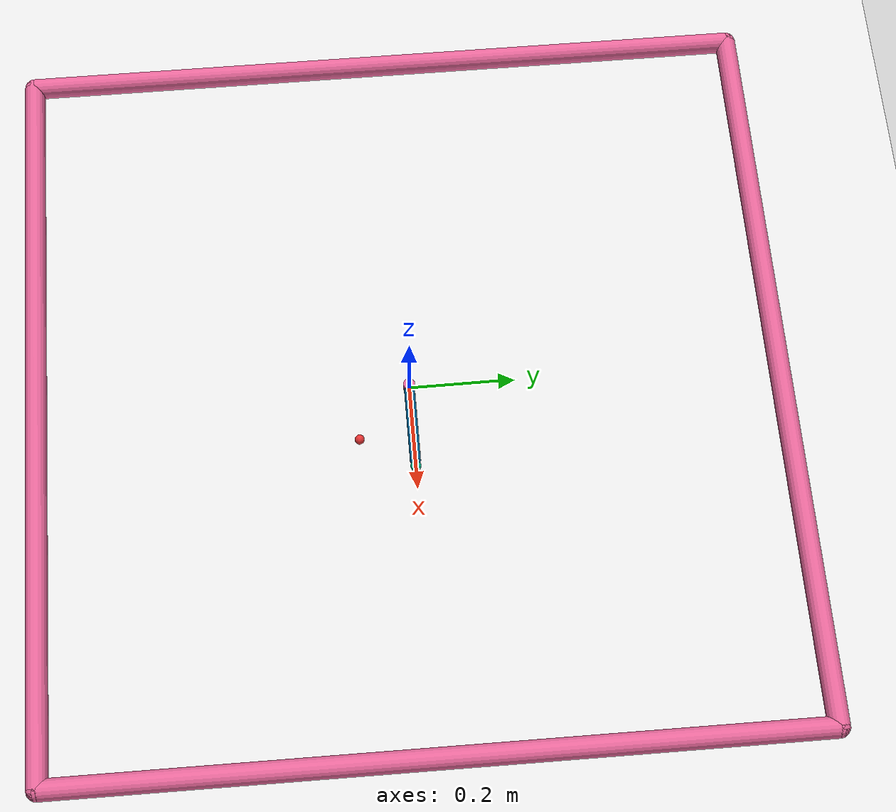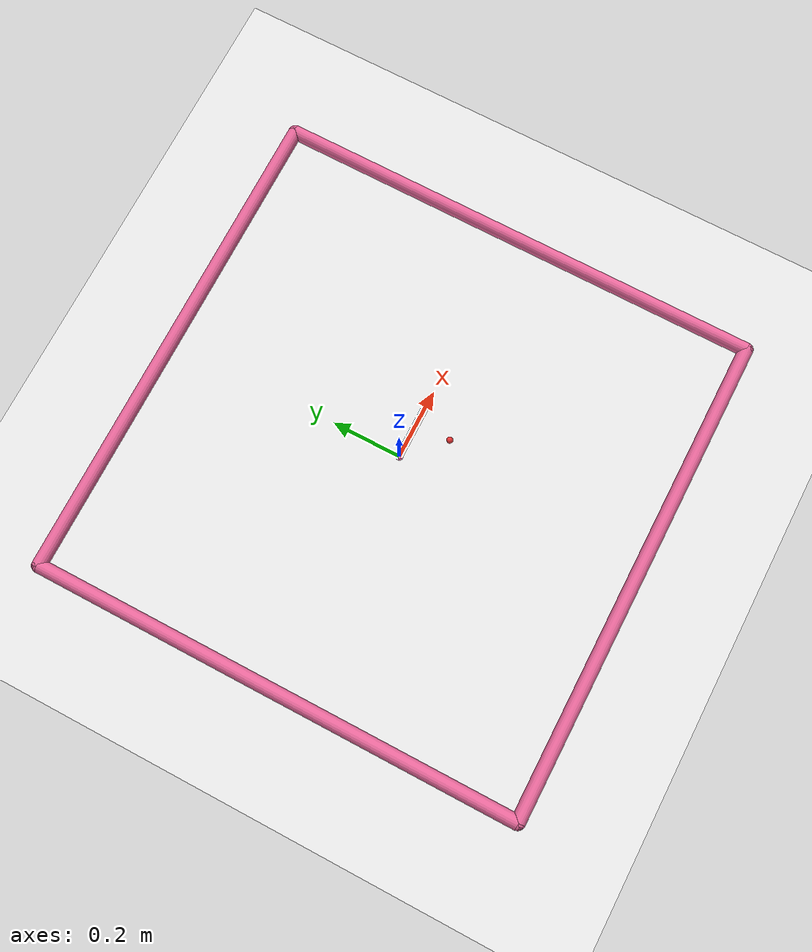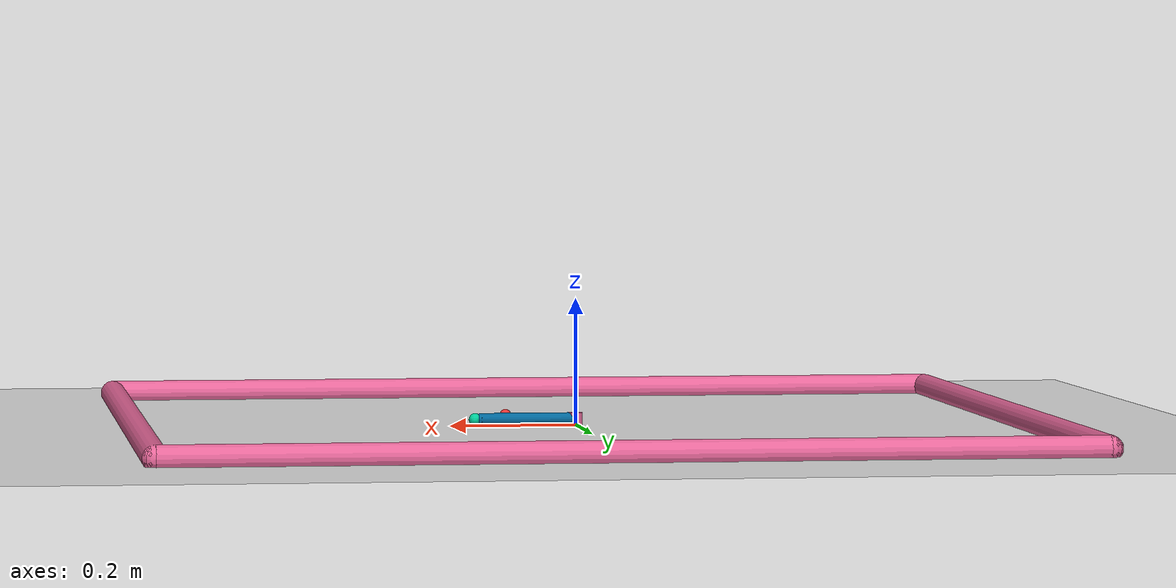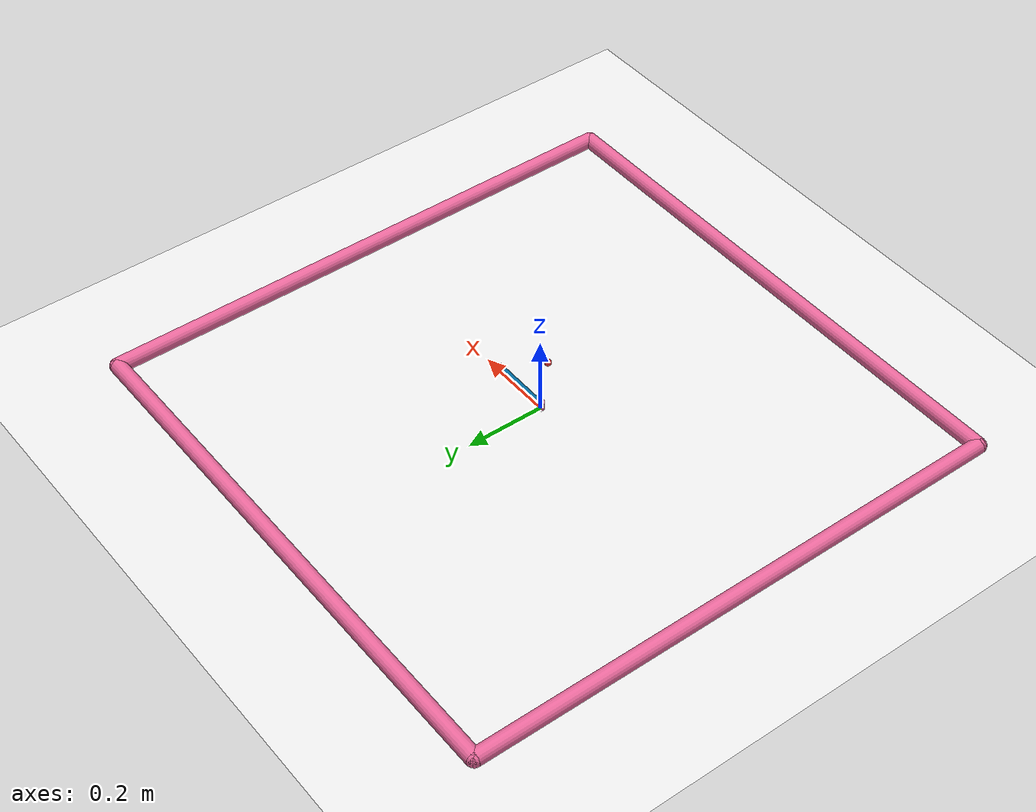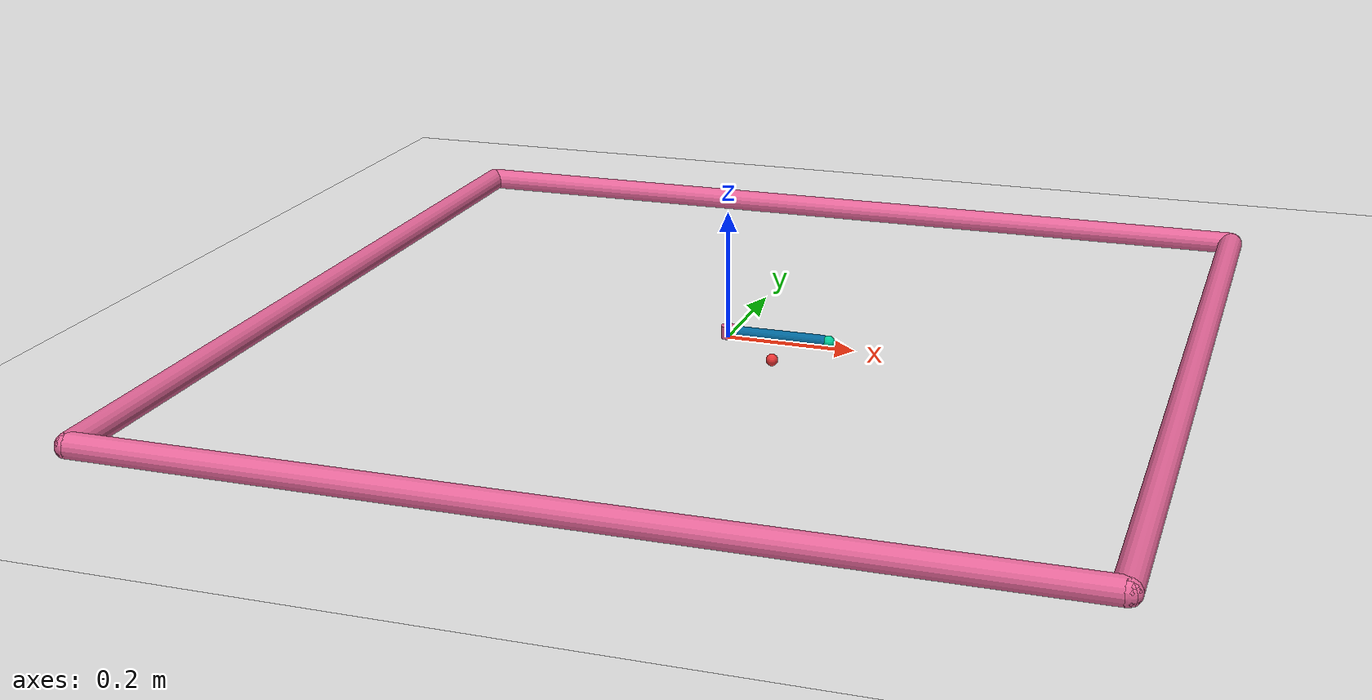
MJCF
<mujoco model="reacher">
	<compiler angle="radian" inertiafromgeom="true"/>
	<default>
		<joint armature="1" damping="1" limited="true"/>
		<geom contype="0" friction="1 0.1 0.1" rgba="0.7 0.7 0 1"/>
	</default>
	<option gravity="0 0 -9.81" integrator="RK4" timestep="0.01"/>
	<worldbody>
		<light cutoff="100" diffuse="1 1 1" dir="-0 0 -1.3" directional="true" exponent="1" pos="0 0 1.3" specular=".1 .1 .1" castshadow="false"/>
		<!-- Arena -->
		<geom conaffinity="0" contype="0" name="ground" pos="0 0 0" rgba="0.9 0.9 0.9 1" size="1 1 10" type="plane"/>
		<geom conaffinity="0" fromto="-.7 -.7 .01 .7 -.7 .01" name="sideS" rgba="0.9 0.4 0.6 1" size=".02" type="capsule"/>
		<geom conaffinity="0" fromto=" .7 -.7 .01 .7  .7 .01" name="sideE" rgba="0.9 0.4 0.6 1" size=".02" type="capsule"/>
		<geom conaffinity="0" fromto="-.7  .7 .01 .7  .7 .01" name="sideN" rgba="0.9 0.4 0.6 1" size=".02" type="capsule"/>
		<geom conaffinity="0" fromto="-.7 -.7 .01 -.7 .7 .01" name="sideW" rgba="0.9 0.4 0.6 1" size=".02" type="capsule"/>
		<!-- Arm -->
		<geom conaffinity="0" contype="0" fromto="0 0 0 0 0 0.02" name="root" rgba="0.9 0.4 0.6 1" size=".011" type="cylinder"/>
		<body name="body0" pos="0 0 .01">
			<geom fromto="0 0 0 0.15 0 0" name="link0" rgba="0.0 0.4 0.6 1" size=".01" type="capsule"/>
			<joint axis="0 0 1" limited="false" name="joint0" pos="0 0 0" type="hinge"/>
			<body name="fingertip" pos="0.16 0 0">
				<geom contype="0" name="fingertip" pos="0 0 0" rgba="0.0 0.8 0.6 1" size=".01" type="sphere"/>
			</body>
		</body>
		<!-- Target -->
		<body name="target" pos=".1 -.1 .01">
			<joint armature="0" axis="1 0 0" damping="0" limited="true" name="target_x" pos="0 0 0" range="-.8 .8" ref=".1" stiffness="0" type="slide"/>
			<joint armature="0" axis="0 1 0" damping="0" limited="true" name="target_y" pos="0 0 0" range="-.8 .8" ref="-.1" stiffness="0" type="slide"/>
			<geom conaffinity="0" contype="0" name="target" pos="0 0 0" rgba="0.9 0.2 0.2 1" size=".009" type="sphere"/>
		</body>
	</worldbody>

	<actuator>
		<motor ctrllimited="true" ctrlrange="-1.0 1.0" gear="20.0" joint="joint0"/>
	</actuator>
</mujoco>
